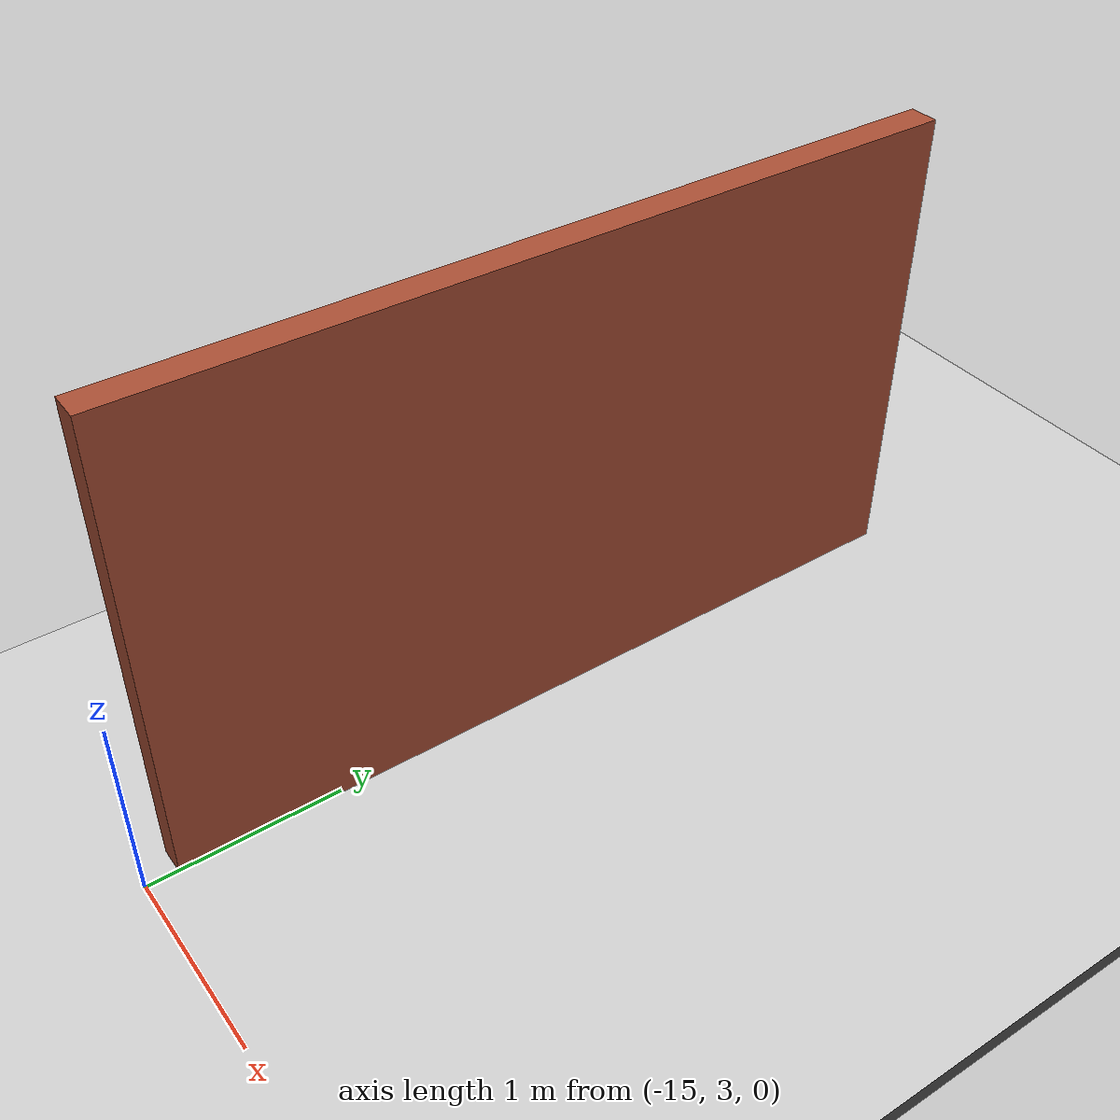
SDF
<sdf version="1.6">
 <world name="default">
  <model name="ground_plane">
   <static>1</static>
   <link name="link">
    <collision name="collision">
     <geometry><plane><normal>0 0 1</normal><size>100 100</size></plane></geometry>
     <surface><friction><ode><mu>100</mu><mu2>50</mu2></ode></friction></surface>
    </collision>
    <visual name="visual">
     <cast_shadows>0</cast_shadows>
     <geometry><plane><normal>0 0 1</normal><size>100 100</size></plane></geometry>
     <material>
      <script><uri>file://media/materials/scripts/gazebo.material</uri><name>Gazebo/Grey</name></script>
     </material>
    </visual>
   </link>
  </model>
  <model name="asphalt_plane">
   <static>1</static>
   <link name="link">
    <collision name="collision"><geometry><box><size>20 20 0.1</size></box></geometry></collision>
    <visual name="visual">
     <cast_shadows>0</cast_shadows>
     <geometry><box><size>20 20 0.1</size></box></geometry>
     <material>
      <script>
       <uri>model://asphalt_plane/materials/scripts</uri>
       <uri>model://asphalt_plane/materials/textures</uri>
       <name>vrc/asphalt</name>
      </script>
     </material>
    </visual>
   </link>
   <pose>10 10 0 0 -0 0</pose>
  </model>
  <model name="worlds_1_clone_1_clone_clone">
   <pose>-15.0638 5.287 0 0 -0 0</pose>
   <link name="brick_longwall_wall_0">
    <collision name="brick_longwall_wall_0_Collision">
     <geometry><box><size>4.25 0.15 2.5</size></box></geometry>
     <pose>0 0 1.25 0 -0 0</pose>
    </collision>
    <visual name="brick_longwall_wall_0_Visual">
     <pose>0 0 1.25 0 -0 0</pose>
     <geometry><box><size>4.25 0.15 2.5</size></box></geometry>
     <material>
      <script><uri>file://media/materials/scripts/gazebo.material</uri><name>Gazebo/Bricks</name></script>
      <ambient>1 1 1 1</ambient>
     </material>
    </visual>
    <pose>0 -0 0 0 -0 1.5708</pose>
   </link>
   <static>1</static>
  </model>
 </world>
</sdf>
